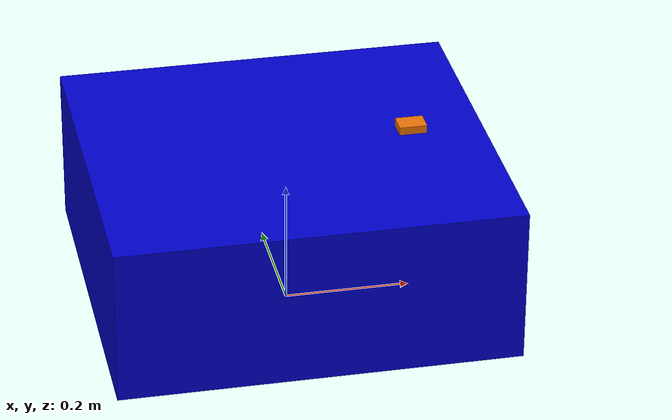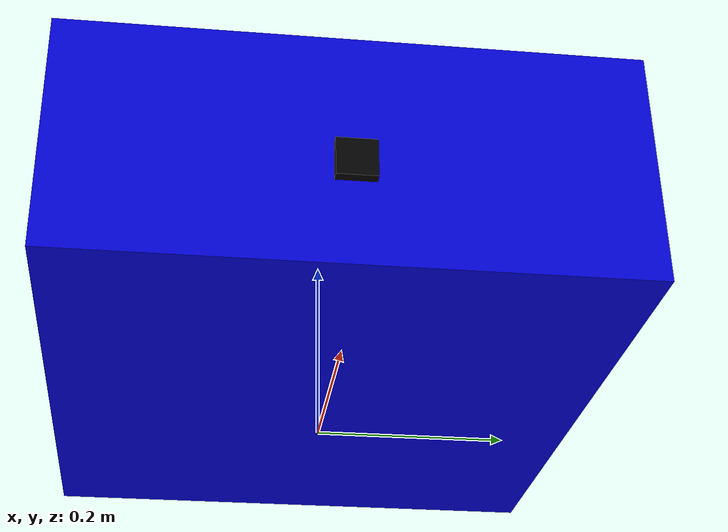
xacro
<?xml version="1.0" ?>
<robot name="solver" xmlns:xacro="http://www.ros.org/wiki/xacro">

  <!-- Import Rviz colors -->
  <xacro:include filename="$(find solver_description)/urdf/materials.xacro" />

  <xacro:property name="base_width" value="0.5775"/>
  <xacro:property name="base_len" value="0.62914"/>
  <xacro:property name="wheel_radius" value="0.060"/>
  <xacro:property name="wheel_separation" value="0.203"/>
  <xacro:property name="wheel_joint_offset" value="0.02"/>

  <!-- base_footprint is a fictitious link(frame) that is on the ground right below base_link origin -->
 <!-- Used for fixing robot to Gazebo 'chassis' -->
    <link name="base_link">
      <visual>
        <origin xyz="0.0 0.0 0.155" rpy="0 0 0"/>
        <geometry>
          <box size="0.62914 0.5775 0.25"/>
        </geometry>
        <material name="blue"/>
      </visual>
    </link>

    <link name="laser">
      <visual>
        <origin xyz="0 0 0 " rpy="0 0 1.57"/>
        <geometry>
          <cylinder radius="0.05" length="0.02"/>
        </geometry>
        <material name="black"/>
      </visual>
    </link>

 <link name="imu_link">
    <visual>
      <origin rpy="0 0 0" xyz="0 0 0"/>
      <geometry>
        <box size="0.044 0.033 0.013"/>
      </geometry>
      <material name="xsens_orange">
        <color rgba="0.92 0.45 0.02 1.0"/>
      </material>
    </visual>
  </link>

    <link name="head_camera">
      <visual>
        <origin xyz="0 0 0" rpy="0 0 0"/>
          <geometry>
            <box size="0.02 0.04 0.04"/>
          </geometry>
          <material name="black"/>
      </visual>
    </link>

    <link name="front/odom">
        <visual>
            <origin xyz="0 0 0.0" rpy="0 0 0.17"/>
            <material name="black">
            </material>
            <geometry>
              <box size="0.01 0.01 0.01"/>
            </geometry>
        </visual>
    </link>

    <link name="back/odom">
        <visual>
            <origin xyz="0 0 0.0" rpy="0 0 0"/>
            <material name="black">
            </material>
            <geometry>
              <box size="0.01 0.01 0.01"/>
            </geometry>
        </visual>
    </link>

<!--Joints -->

    <!-- join between chassi and rplidar_a2 links-->
    <joint name="laser" type="fixed">
      -<origin rpy="0 0 3.14" xyz="0.17 0 0.25"/>
      <parent link="base_link"/>
      <child link="laser"/>
    </joint>

    <!-- join between chassi and imu links-->
    <joint name="base_link__imu_link" type="fixed">
      <origin rpy="0 0 0" xyz="0.20 0 0.29"/>
      <parent link="base_link"/>
      <child link="imu_link"/>
    </joint>

    <!-- join between chassi and imu links-->
    <joint name="base_link__head_camera_link" type="fixed">
      <origin rpy="0 0 0" xyz="0.315 0 0.1375"/>
      <parent link="base_link"/>
      <child link="head_camera"/>
    </joint>

    <!-- join between chassi and imu links-->
    <joint name="base_link__front_odom_link" type="fixed">
      <origin rpy="0 0 0" xyz="0.203 0 0.1375"/>
      <parent link="base_link"/>
      <child link="front/odom"/>
    </joint>

    <!-- join between chassi and imu links-->
    <joint name="base_link__back_odom_link" type="fixed">
      <origin rpy="0 0 0" xyz="-0.203 0 0.1375"/>
      <parent link="base_link"/>
      <child link="back/odom"/>
    </joint>

</robot>

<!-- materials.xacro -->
<robot>

  <material name="black">
    <color rgba="0.0 0.0 0.0 1.0"/>
  </material>

  <material name="blue">
    <color rgba="0.0 0.0 0.8 1.0"/>
  </material>

  <material name="green">
    <color rgba="0.0 0.8 0.0 1.0"/>
  </material>

  <material name="grey">
    <color rgba="0.2 0.2 0.2 1.0"/>
  </material>

  <material name="red">
    <color rgba="0.8 0.0 0.0 1.0"/>
  </material>

  <material name="white">
    <color rgba="1.0 1.0 1.0 1.0"/>
  </material>

</robot>
